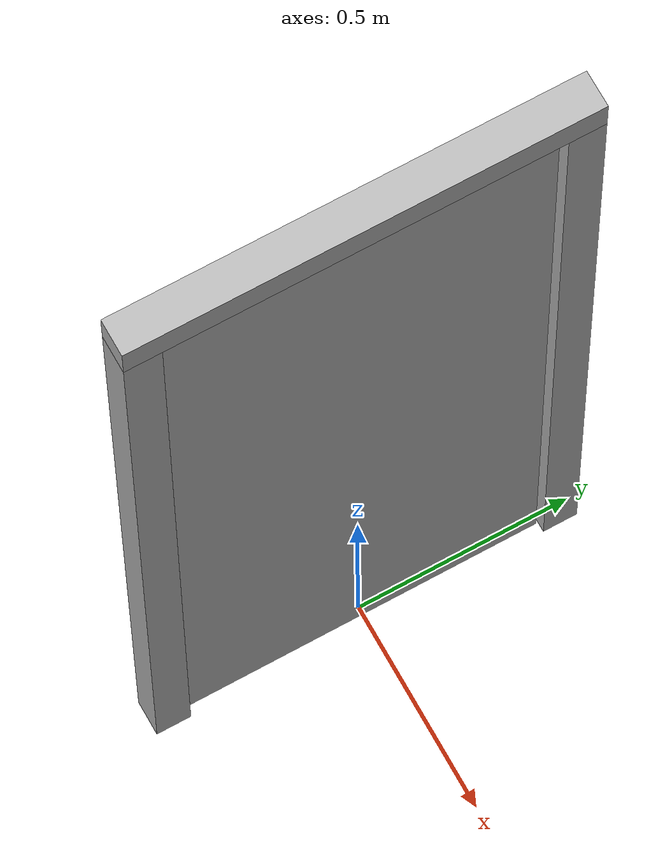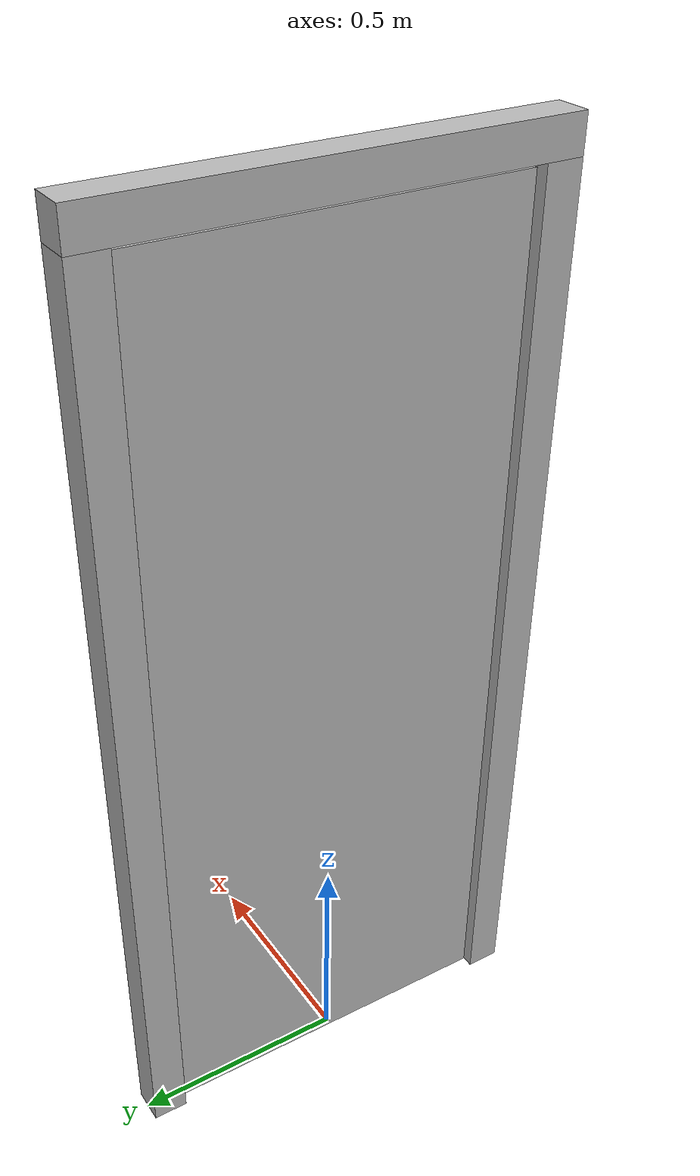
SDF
<?xml version="1.0" ?>
<sdf version="1.5">
  <world name="default">

    <plugin name="test_pcg_joint_state_manager"
            filename="libpcg_joint_state_manager_plugin.so">
        <namespace>pcg_test</namespace>
    </plugin>

    <model name="door">
        <link name="frame_left">
            <pose>0 0.46 1.03 0 0 0</pose>
            <visual name="frame_left_visual">
                <pose>0 0 0 0 0 0</pose>
                <geometry>
                    <box>
                        <size>0.08 0.08 2.06</size>
                    </box>
                </geometry>
            </visual>

            <collision name="frame_left_collision">
                <pose>0 0 0 0 0 0</pose>
                <geometry>
                    <box>
                        <size>0.08 0.08 2.06</size>
                    </box>
                </geometry>
            </collision>
        </link>

        <joint name="world_frame_left_joint" type="fixed">
              <child>frame_left</child>
              <parent>world</parent>
              <axis>
                <limit>
                  <lower>0</lower>
                  <upper>0</upper>
                </limit>
                <xyz>0 1 0</xyz>
              </axis>
        </joint>

        <link name="frame_right">
            <pose>0 -0.46 1.03 0 0 0</pose>
            <visual name="frame_right_visual">
                <pose>0 0 0 0 0 0</pose>
                <geometry>
                    <box>
                        <size>0.08 0.08 2.06</size>
                    </box>
                </geometry>
            </visual>

            <collision name="frame_right_collision">
                <pose>0 0 0 0 0 0</pose>
                <geometry>
                    <box>
                        <size>0.08 0.08 2.06</size>
                    </box>
                </geometry>
            </collision>
        </link>

        <joint name="world_frame_right_join" type="fixed">
              <child>frame_right</child>
              <parent>world</parent>
              <axis>
                <limit>
                  <lower>0</lower>
                  <upper>0</upper>
                </limit>
                <xyz>0 1 0</xyz>
              </axis>
        </joint>

        <link name="frame_top">
            <pose>0 0 2.1 0 0 0</pose>
            <visual name="frame_top_visual">
                <pose>0 0 0 0 0 0</pose>
                <geometry>
                    <box>
                        <size>0.08 1.0 0.08</size>
                    </box>
                </geometry>
            </visual>

            <collision name="frame_top_collision">
                <pose>0 0 0 0 0 0</pose>
                <geometry>
                    <box>
                        <size>0.08 0.84 0.08</size>
                    </box>
                </geometry>
            </collision>
        </link>

        <joint name="world_frame_top_joint" type="fixed">
              <child>frame_top</child>
              <parent>world</parent>
              <axis>
                <limit>
                  <lower>0</lower>
                  <upper>0</upper>
                </limit>
                <xyz>0 1 0</xyz>
              </axis>
        </joint>

        <link name="door">
            <pose>0 0 1.03 0 0 0</pose>

            <inertial>
                <pose>0 0 0 0 0 0</pose>
                <mass>20</mass>

                <inertia>
                    <ixx>8.073</ixx>
                    <ixy>0</ixy>
                    <ixz>0</ixz>
                    <iyy>6.939</iyy>
                    <iyz>0</iyz>
                    <izz>1.1398</izz>
                </inertia>
            </inertial>

            <visual name="door_visual">
                <pose>0 0 0 0 0 0</pose>
                <geometry>
                    <box>
                        <size>0.04 0.826 2.04</size>
                    </box>
                </geometry>
                <material>
                    <script>Gazebo/LightWood</script>
                </material>
            </visual>

            <collision name="door_collision">
                <pose>0 0 0 0 0 0</pose>
                <geometry>
                    <box>
                        <size>0.04 0.826 2.04</size>
                    </box>
                </geometry>
            </collision>
        </link>

        <joint name="door_joint" type="revolute">
            <child>door</child>
            <parent>frame_right</parent>
            <pose>0 0.413 0 0 0 0</pose>
            <axis>
                <limit>
                    <lower>-1.57</lower>
                    <upper>1.57</upper>
                </limit>
                <xyz>0 0 1</xyz>
                <dynamics>
                    <damping>0.001</damping>
                    <spring_stiffness>0</spring_stiffness>
                </dynamics>
            </axis>
        </joint>
    </model>
  </world>
</sdf>
